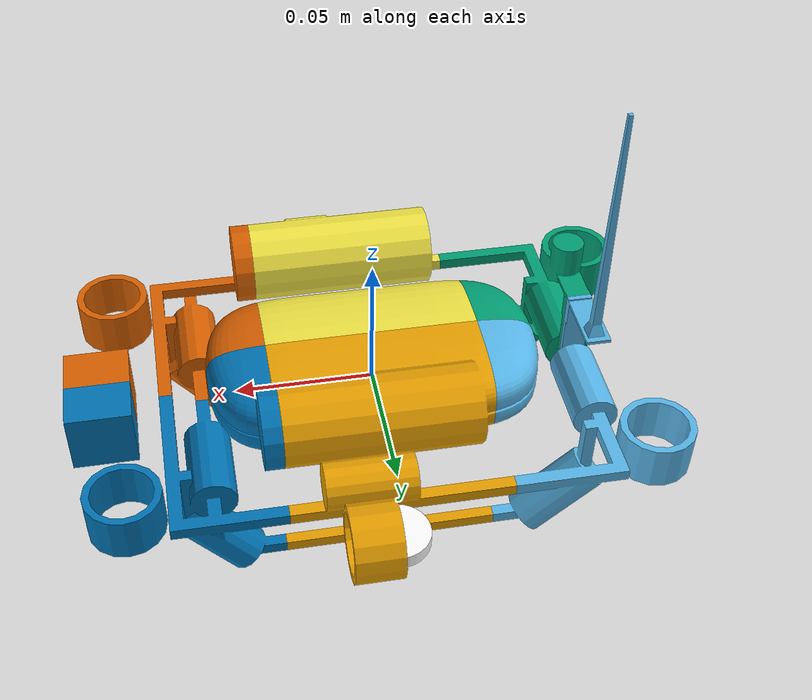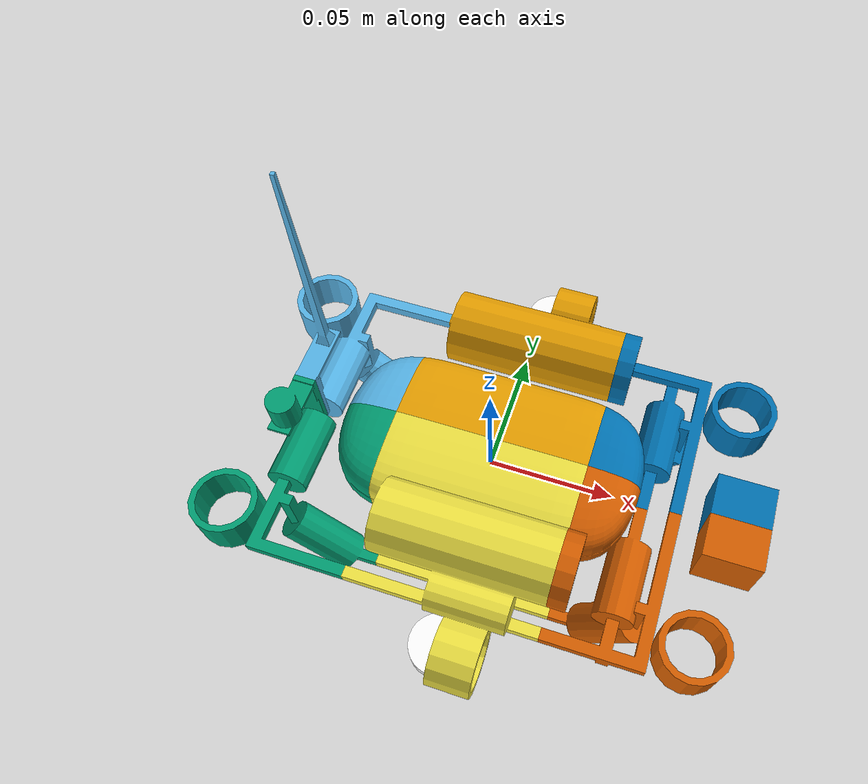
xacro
<?xml version="1.0"?>

<robot name="athena" xmlns:xacro="http://www.ros.org/wiki/xacro">

    <xacro:arg name="windType" default="global" />
    <xacro:arg name="waterType" default="global" />
    <xacro:property name="windType" value="$(arg windType)" />
    <xacro:property name="waterType" value="$(arg waterType)" />
    <xacro:property name="dampingXYZ" value="1.88 10 6.66" />
    <xacro:property name="angularDampingXYZ" value="2 15 2" />
    <xacro:property name="extraPayload" value="3" />
    <xacro:include filename="$(find usv_sim)/xacro/athena_subdivided_validated.xacro" />

    <!-- Plugin list -->
    <gazebo>
        <plugin name="freefloating_gazebo_control" filename="libfreefloating_gazebo_control.so">
            <switchService>switch</switchService>
            <updateRate>100</updateRate>
            <link>fwd_left</link>
            <thruster>
				<effortUnderWater>11.5</effortUnderWater>
				<effortOverWater>0</effortOverWater>
                <name>fwd_left</name>
            </thruster>
   	    <thruster>
	        <effortUnderWater>11.5</effortUnderWater>
				<effortOverWater>0</effortOverWater>
	        <name>fwd_right</name>
	    </thruster>
        </plugin>
    </gazebo>

    <!-- Define two steering thrusters, with assumed force control in Z-direction -->
    <xacro:thruster_link name="fwd_left"  xyz="0.005 0.0755 0" rpy="0 ${PI/2} 0" rotationAxis="1 0 0" lowerLimit="0" upperLimit="0" parentLink="base_link" thruster_scale="0.015"/>
    <xacro:thruster_link name="fwd_right" xyz="0.005 -0.0755 0" rpy="0 ${PI/2} 0" rotationAxis="1 0 0" lowerLimit="0" upperLimit="0" parentLink="center_r_link" thruster_scale="0.015"/>

</robot>

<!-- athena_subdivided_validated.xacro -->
<xacro xmlns:xacro="http://www.ros.org/wiki/xacro">

  <xacro:property name="PI" value="3.1415926535897931"/>

  <!-- Body properties -->
  <xacro:property name="front_body_mass" value="0.5"/>
  <xacro:property name="back_body_mass" value="2"/>
  <xacro:property name="middle_body_mass" value="2"/>
  <xacro:property name="back_water_displaced_mass" value="10"/>
  <xacro:property name="middle_water_displaced_mass" value="10"/>
  <xacro:property name="front_water_displaced_mass" value="5"/>
  <xacro:property name="scale" value="0.21"/>
  <xacro:property name="bl1" value=".1" />
  <xacro:property name="bl2" value=".1" />

  <link name='base_link'>
    <pose frame=''>0 0 0 0 -0 0</pose>
    <inertial>
      <pose frame=''>0.0735 0.0924 -0.042 0 -0 0</pose>
      <mass value="3.5"/>
      <inertia ixx="0.1" ixy="0" ixz="0" iyy="1.4" iyz="0" izz="1.4"/>
    </inertial>
    <visual>
      <pose frame=''>0 0 0 0 -0 0</pose>
      <geometry>
        <mesh filename="package://usv_sim/meshes/naiad/base_link.dae" scale="0.21 0.21 0.21" />
      </geometry>
    </visual>
    <collision>
      <pose frame=''>0 0 0 0 -0 0</pose>
      <geometry>
        <mesh filename="package://usv_sim/meshes/naiad/base_link.dae"/>
      </geometry>
    </collision>
    <buoyancy>
      <compensation>${middle_water_displaced_mass/middle_body_mass}</compensation>
      <origin xyz="0 0 0"/>
      <limit radius="0.1"/>
      <damping rpy="${angularDampingXYZ}" xyz="${dampingXYZ}"/>
      <windVelocity>${windType}</windVelocity>
      <frontal_area>0.0</frontal_area>
      <lateral_area>0.012</lateral_area>
      <lateral_length>1.06</lateral_length>
      <waterVelocity>${waterType}</waterVelocity>
    </buoyancy>
  </link>

  <link name='back_l_link'>
    <pose frame=''>0 0 0 0 -0 0</pose>
    <inertial>
      <pose frame=''>-0.126 0 -0.042 0 -0 0</pose>
      <mass value="2"/>
      <inertia ixx="0.1" ixy="0" ixz="0" iyy="1.4" iyz="0" izz="1.4"/>
    </inertial>
    <visual>
      <pose frame=''>0 0 0 0 -0 0</pose>
      <geometry>
        <mesh filename="package://usv_sim/meshes/naiad/backLeft.dae" scale="0.21 0.21 0.21"/>
      </geometry>
    </visual>
    <collision>
      <pose frame=''>0 0 0 0 -0 0</pose>
      <geometry>
        <mesh filename="package://usv_sim/meshes/naiad/backLeft.dae" />
      </geometry>
    </collision>
    <buoyancy>
      <compensation>${back_water_displaced_mass/back_body_mass}</compensation>
      <origin xyz="0 0 0"/>
      <limit radius="0.1"/>
      <damping rpy="${angularDampingXYZ}" xyz="${dampingXYZ}"/>
      <windVelocity>${windType}</windVelocity>
      <frontal_area>0.0</frontal_area>
      <lateral_area>0.012</lateral_area>
      <lateral_length>1.06</lateral_length>
      <waterVelocity>${waterType}</waterVelocity>
    </buoyancy>
  </link>

  <link name='back_r_link'>
    <pose frame=''>0 0 0 0 -0 0</pose>
    <inertial>
      <pose frame=''>-0.126 0 -0.042 0 -0 0</pose>
      <mass value="2"/>
      <inertia ixx="0.1" ixy="0" ixz="0" iyy="1.4" iyz="0" izz="1.4"/>
    </inertial>
    <visual>
      <pose frame=''>0 0 0 0 -0 0</pose>
      <geometry>
        <mesh filename="package://usv_sim/meshes/naiad/backRight.dae" scale="0.21 0.21 0.21"/>
      </geometry>
    </visual>
    <collision>
      <pose frame=''>0 0 0 0 -0 0</pose>
      <geometry>
        <mesh filename="package://usv_sim/meshes/naiad/backRight.dae" />
      </geometry>
    </collision>
    <buoyancy>
      <compensation>${back_water_displaced_mass/back_body_mass}</compensation>
      <origin xyz="0 0 0"/>
      <limit radius="0.1"/>
      <damping rpy="${angularDampingXYZ}" xyz="${dampingXYZ}"/>
      <windVelocity>${windType}</windVelocity>
      <frontal_area>0.0</frontal_area>
      <lateral_area>0.012</lateral_area>
      <lateral_length>1.06</lateral_length>
      <waterVelocity>${waterType}</waterVelocity>
    </buoyancy>
  </link>

  <link name='center_r_link'>
    <pose frame=''>0 0 0 0 -0 0</pose>
    <inertial>
      <pose frame=''>0.0735 -0.0924 -0.042 0 -0 0</pose>
      <mass value="3.5"/>
      <inertia ixx="0.1" ixy="0" ixz="0" iyy="1.4" iyz="0" izz="1.4"/>
    </inertial>
    <visual>
      <pose frame=''>0 0 0 0 -0 0</pose>
      <geometry>
        <mesh filename="package://usv_sim/meshes/naiad/centerRight.dae" scale="0.21 0.21 0.21"/>
      </geometry>
    </visual>
    <collision>
      <pose frame=''>0 0 0 0 -0 0</pose>
      <geometry>
        <mesh filename="package://usv_sim/meshes/naiad/centerRight.dae" />
      </geometry>
    </collision>
    <buoyancy>
      <compensation>${middle_water_displaced_mass/middle_body_mass}</compensation>
      <origin xyz="0 0 0"/>
      <limit radius="0.1"/>
      <damping rpy="${angularDampingXYZ}" xyz="${dampingXYZ}"/>
      <windVelocity>${windType}</windVelocity>
      <frontal_area>0.0</frontal_area>
      <lateral_area>0.012</lateral_area>
      <lateral_length>1.06</lateral_length>
      <waterVelocity>${waterType}</waterVelocity>
    </buoyancy>
  </link>

  <link name='front_l_link'>
    <pose frame=''>0 0 0 0 -0 0</pose>
    <inertial>
      <pose frame=''>0.084 0 -0.021 0 -0 0</pose>
      <mass value="0.5"/>
      <inertia ixx="0.1" ixy="0" ixz="0" iyy="1.4" iyz="0" izz="1.4"/>
    </inertial>
    <visual>
      <pose frame=''>0 0 0 0 -0 0</pose>
      <geometry>
        <mesh filename="package://usv_sim/meshes/naiad/frontLeft.dae" scale="0.21 0.21 0.21"/>
      </geometry>
    </visual>
    <collision>
      <pose frame=''>0 0 0 0 -0 0</pose>
      <geometry>
        <mesh filename="package://usv_sim/meshes/naiad/frontLeft.dae" />
      </geometry>
    </collision>
    <buoyancy>
      <compensation>${front_water_displaced_mass/front_body_mass}</compensation>
      <origin xyz="0 0 0"/>
      <limit radius="0.1"/>
      <damping rpy="${angularDampingXYZ}" xyz="${dampingXYZ}"/>
      <windVelocity>${windType}</windVelocity>
      <frontal_area>0.0</frontal_area>
      <lateral_area>0.012</lateral_area>
      <lateral_length>1.06</lateral_length>
      <waterVelocity>${waterType}</waterVelocity>
    </buoyancy>
  </link>

  <link name='front_r_link'>
    <pose frame=''>0 0 0 0 -0 0</pose>
    <inertial>
      <pose frame=''>0.084 0 -0.021 0 -0 0</pose>
      <mass value="0.5"/>
      <inertia ixx="0.1" ixy="0" ixz="0" iyy="1.4" iyz="0" izz="1.4"/>
    </inertial>
    <visual>
      <pose frame=''>0 0 0 0 -0 0</pose>
      <geometry>
        <mesh filename="package://usv_sim/meshes/naiad/frontRight.dae" scale="0.21 0.21 0.21"/>
      </geometry>
    </visual>
    <collision>
      <pose frame=''>0 0 0 0 -0 0</pose>
      <geometry>
        <mesh filename="package://usv_sim/meshes/naiad/frontRight.dae" />
      </geometry>
    </collision>
    <buoyancy>
      <compensation>${front_water_displaced_mass/front_body_mass}</compensation>
      <origin xyz="0 0 0"/>
      <limit radius="0.1"/>
      <damping rpy="${angularDampingXYZ}" xyz="${dampingXYZ}"/>
      <windVelocity>${windType}</windVelocity>
      <frontal_area>0.0</frontal_area>
      <lateral_area>0.012</lateral_area>
      <lateral_length>1.06</lateral_length>
      <waterVelocity>${waterType}</waterVelocity>
    </buoyancy>
  </link>

    <joint name='back_l_joint' type='revolute'>
      <parent link="base_link"/>
      <child link="back_l_link"/>
      <pose frame=''>0 0 0 0 -0 0</pose>
      <limit effort="50" velocity="5" lower="0" upper="0" />
      <dynamics damping="1.0"/>
      <axis xyz="1 0 0"/>
    </joint>

    <joint name='back_r_joint' type='revolute'>
      <parent link="base_link"/>
      <child link="back_r_link"/>
      <pose frame=''>0 0 0 0 -0 0</pose>
      <limit effort="50" velocity="5" lower="0" upper="0" />
      <dynamics damping="1.0"/>
      <axis xyz="1 0 0"/>
    </joint>

    <joint name='center_r_joint' type='revolute'>
      <parent link="base_link"/>
      <child link="center_r_link"/>
      <pose frame=''>0 0 0 0 -0 0</pose>
      <limit effort="50" velocity="5" lower="0" upper="0" />
      <dynamics damping="1.0"/>
      <axis xyz="1 0 0"/>
    </joint>

    <joint name='front_l_joint' type='revolute'>
      <parent link="base_link"/>
      <child link="front_l_link"/>
      <pose frame=''>0 0 0 0 -0 0</pose>
      <limit effort="50" velocity="5" lower="0" upper="0" />
      <dynamics damping="1.0"/>
      <axis xyz="1 0 0"/>
    </joint>

    <joint name='front_r_joint' type='revolute'>
      <parent link="base_link"/>
      <child link="front_r_link"/>
      <pose frame=''>0 0 0 0 -0 0</pose>
      <limit effort="50" velocity="5" lower="0" upper="0" />
      <dynamics damping="1.0"/>
      <axis xyz="1 0 0"/>
    </joint>

      <plugin name='freefloating_gazebo_control' filename='libfreefloating_gazebo_control.so'>
        <switchService>switch</switchService>
        <updateRate>100</updateRate>
        <link>fwd_left</link>
        <thruster>
          <effortUnderWater>11.5</effortUnderWater>
          <effortOverWater>0</effortOverWater>
          <name>fwd_left</name>
        </thruster>
        <thruster>
          <effortUnderWater>11.5</effortUnderWater>
          <effortOverWater>0</effortOverWater>
          <name>fwd_right</name>
        </thruster>
        <robotNamespace>/</robotNamespace>
      </plugin>

      <!-- Thruster link -->
      <xacro:macro name="thruster_link" params="name xyz rpy rotationAxis effort:=50 velocity:=5 lowerLimit upperLimit parentLink:=back_r_link thruster_scale:=0.02">
        <joint name="${name}_joint" type="revolute">
          <parent link="${parentLink}"/>
          <child link="${name}"/>
          <origin rpy="${rpy}" xyz="${xyz}"/>
          <dynamics damping="1.0"/>
          <axis xyz="${rotationAxis}"/>
          <limit effort="${effort}" velocity="${velocity}" lower="${lowerLimit}" upper="${upperLimit}" />
        </joint>

        <link name="${name}">
          <collision>
            <origin xyz="${0*thruster_scale} 0 ${0*thruster_scale}" rpy="0 0 0"/>
            <geometry>
              <mesh filename="package://usv_sim/meshes/simpleHull3/airPropeller.dae" scale="${thruster_scale} ${thruster_scale} ${thruster_scale}"/>
            </geometry>
          </collision>

          <visual name="${name}">
            <origin xyz="${0*thruster_scale} 0 ${0*thruster_scale}" rpy="0 0 0" />
            <geometry>
              <mesh filename="package://usv_sim/meshes/simpleHull3/airPropeller.dae" scale="${thruster_scale} ${thruster_scale} ${thruster_scale}"/>
            </geometry>
            <material name="black">
              <color rgba="255 255 255 1"/>
            </material>
          </visual>

          <inertial>
            <mass value="0.1"/>
            <origin xyz="${-0.2*thruster_scale} 0 ${0.3*thruster_scale}" rpy="0 0 0" />
            <inertia
              ixx=".1"
              ixy="0.0"
              ixz="0.0"
              iyy=".1"
              iyz="0.0"
              izz=".1"/>
          </inertial>
          <buoyancy>
            <compensation>0.8</compensation>
            <windVelocity>${windType}</windVelocity>
            <waterVelocity>${waterType}</waterVelocity>
          </buoyancy>
        </link>

        <gazebo reference="${name}">
          <material>Gazebo/Black</material>
        </gazebo>
      </xacro:macro>

      <!-- Thruster link -->
      <xacro:macro name="thruster_dummy_link" params="name xyz rpy">
        <joint name="${name}" type="fixed">
          <parent link="base_link"/>
          <child link="${name}"/>
          <origin rpy="${rpy}" xyz="${xyz}"/>
        </joint>
        <link name="${name}"/>
      </xacro:macro>

      <!-- Sensors -->

    </xacro>
